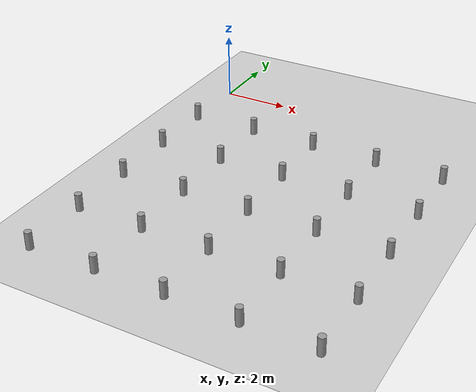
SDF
<sdf version="1.5">
 <world name="default">
  <model name="ground_plane">
   <static>1</static>
   <link name="link">
    <collision name="collision">
     <geometry><plane><normal>0 0 1</normal><size>100 100</size></plane></geometry>
     <surface><friction><ode><mu>100</mu><mu2>50</mu2></ode></friction></surface>
    </collision>
    <visual name="visual">
     <cast_shadows>0</cast_shadows>
     <geometry><plane><normal>0 0 1</normal><size>100 100</size></plane></geometry>
     <material>
      <script><uri>file://media/materials/scripts/gazebo.material</uri><name>Gazebo/Grey</name></script>
     </material>
    </visual>
   </link>
  </model>
  <model name="unit_cylinder_0_-10">
   <pose>0 -10 0 0 -0 1.7e-05</pose>
   <link name="link">
    <inertial>
     <mass>1</mass>
     <inertia><ixx>1</ixx><ixy>0</ixy><ixz>0</ixz><iyy>1</iyy><iyz>0</iyz><izz>1</izz></inertia>
    </inertial>
    <collision name="collision">
     <geometry><cylinder><radius>0.1</radius><length>1</length></cylinder></geometry>
    </collision>
    <visual name="visual">
     <geometry><cylinder><radius>0.1</radius><length>1</length></cylinder></geometry>
     <material>
      <script><uri>file://media/materials/scripts/gazebo.material</uri><name>Gazebo/Grey</name></script>
     </material>
    </visual>
   </link>
  </model>
  <model name="unit_cylinder_0_-8">
   <pose>0 -8 0 0 -0 1.7e-05</pose>
   <link name="link">
    <inertial>
     <mass>1</mass>
     <inertia><ixx>1</ixx><ixy>0</ixy><ixz>0</ixz><iyy>1</iyy><iyz>0</iyz><izz>1</izz></inertia>
    </inertial>
    <collision name="collision">
     <geometry><cylinder><radius>0.1</radius><length>1</length></cylinder></geometry>
    </collision>
    <visual name="visual">
     <geometry><cylinder><radius>0.1</radius><length>1</length></cylinder></geometry>
     <material>
      <script><uri>file://media/materials/scripts/gazebo.material</uri><name>Gazebo/Grey</name></script>
     </material>
    </visual>
   </link>
  </model>
  <model name="unit_cylinder_0_-6">
   <pose>0 -6 0 0 -0 1.7e-05</pose>
   <link name="link">
    <inertial>
     <mass>1</mass>
     <inertia><ixx>1</ixx><ixy>0</ixy><ixz>0</ixz><iyy>1</iyy><iyz>0</iyz><izz>1</izz></inertia>
    </inertial>
    <collision name="collision">
     <geometry><cylinder><radius>0.1</radius><length>1</length></cylinder></geometry>
    </collision>
    <visual name="visual">
     <geometry><cylinder><radius>0.1</radius><length>1</length></cylinder></geometry>
     <material>
      <script><uri>file://media/materials/scripts/gazebo.material</uri><name>Gazebo/Grey</name></script>
     </material>
    </visual>
   </link>
  </model>
  <model name="unit_cylinder_0_-4">
   <pose>0 -4 0 0 -0 1.7e-05</pose>
   <link name="link">
    <inertial>
     <mass>1</mass>
     <inertia><ixx>1</ixx><ixy>0</ixy><ixz>0</ixz><iyy>1</iyy><iyz>0</iyz><izz>1</izz></inertia>
    </inertial>
    <collision name="collision">
     <geometry><cylinder><radius>0.1</radius><length>1</length></cylinder></geometry>
    </collision>
    <visual name="visual">
     <geometry><cylinder><radius>0.1</radius><length>1</length></cylinder></geometry>
     <material>
      <script><uri>file://media/materials/scripts/gazebo.material</uri><name>Gazebo/Grey</name></script>
     </material>
    </visual>
   </link>
  </model>
  <model name="unit_cylinder_0_-2">
   <pose>0 -2 0 0 -0 1.7e-05</pose>
   <link name="link">
    <inertial>
     <mass>1</mass>
     <inertia><ixx>1</ixx><ixy>0</ixy><ixz>0</ixz><iyy>1</iyy><iyz>0</iyz><izz>1</izz></inertia>
    </inertial>
    <collision name="collision">
     <geometry><cylinder><radius>0.1</radius><length>1</length></cylinder></geometry>
    </collision>
    <visual name="visual">
     <geometry><cylinder><radius>0.1</radius><length>1</length></cylinder></geometry>
     <material>
      <script><uri>file://media/materials/scripts/gazebo.material</uri><name>Gazebo/Grey</name></script>
     </material>
    </visual>
   </link>
  </model>
  <model name="unit_cylinder_2_-10">
   <pose>2 -10 0 0 -0 1.7e-05</pose>
   <link name="link">
    <inertial>
     <mass>1</mass>
     <inertia><ixx>1</ixx><ixy>0</ixy><ixz>0</ixz><iyy>1</iyy><iyz>0</iyz><izz>1</izz></inertia>
    </inertial>
    <collision name="collision">
     <geometry><cylinder><radius>0.1</radius><length>1</length></cylinder></geometry>
    </collision>
    <visual name="visual">
     <geometry><cylinder><radius>0.1</radius><length>1</length></cylinder></geometry>
     <material>
      <script><uri>file://media/materials/scripts/gazebo.material</uri><name>Gazebo/Grey</name></script>
     </material>
    </visual>
   </link>
  </model>
  <model name="unit_cylinder_2_-8">
   <pose>2 -8 0 0 -0 1.7e-05</pose>
   <link name="link">
    <inertial>
     <mass>1</mass>
     <inertia><ixx>1</ixx><ixy>0</ixy><ixz>0</ixz><iyy>1</iyy><iyz>0</iyz><izz>1</izz></inertia>
    </inertial>
    <collision name="collision">
     <geometry><cylinder><radius>0.1</radius><length>1</length></cylinder></geometry>
    </collision>
    <visual name="visual">
     <geometry><cylinder><radius>0.1</radius><length>1</length></cylinder></geometry>
     <material>
      <script><uri>file://media/materials/scripts/gazebo.material</uri><name>Gazebo/Grey</name></script>
     </material>
    </visual>
   </link>
  </model>
  <model name="unit_cylinder_2_-6">
   <pose>2 -6 0 0 -0 1.7e-05</pose>
   <link name="link">
    <inertial>
     <mass>1</mass>
     <inertia><ixx>1</ixx><ixy>0</ixy><ixz>0</ixz><iyy>1</iyy><iyz>0</iyz><izz>1</izz></inertia>
    </inertial>
    <collision name="collision">
     <geometry><cylinder><radius>0.1</radius><length>1</length></cylinder></geometry>
    </collision>
    <visual name="visual">
     <geometry><cylinder><radius>0.1</radius><length>1</length></cylinder></geometry>
     <material>
      <script><uri>file://media/materials/scripts/gazebo.material</uri><name>Gazebo/Grey</name></script>
     </material>
    </visual>
   </link>
  </model>
  <model name="unit_cylinder_2_-4">
   <pose>2 -4 0 0 -0 1.7e-05</pose>
   <link name="link">
    <inertial>
     <mass>1</mass>
     <inertia><ixx>1</ixx><ixy>0</ixy><ixz>0</ixz><iyy>1</iyy><iyz>0</iyz><izz>1</izz></inertia>
    </inertial>
    <collision name="collision">
     <geometry><cylinder><radius>0.1</radius><length>1</length></cylinder></geometry>
    </collision>
    <visual name="visual">
     <geometry><cylinder><radius>0.1</radius><length>1</length></cylinder></geometry>
     <material>
      <script><uri>file://media/materials/scripts/gazebo.material</uri><name>Gazebo/Grey</name></script>
     </material>
    </visual>
   </link>
  </model>
  <model name="unit_cylinder_2_-2">
   <pose>2 -2 0 0 -0 1.7e-05</pose>
   <link name="link">
    <inertial>
     <mass>1</mass>
     <inertia><ixx>1</ixx><ixy>0</ixy><ixz>0</ixz><iyy>1</iyy><iyz>0</iyz><izz>1</izz></inertia>
    </inertial>
    <collision name="collision">
     <geometry><cylinder><radius>0.1</radius><length>1</length></cylinder></geometry>
    </collision>
    <visual name="visual">
     <geometry><cylinder><radius>0.1</radius><length>1</length></cylinder></geometry>
     <material>
      <script><uri>file://media/materials/scripts/gazebo.material</uri><name>Gazebo/Grey</name></script>
     </material>
    </visual>
   </link>
  </model>
  <model name="unit_cylinder_4_-10">
   <pose>4 -10 0 0 -0 1.7e-05</pose>
   <link name="link">
    <inertial>
     <mass>1</mass>
     <inertia><ixx>1</ixx><ixy>0</ixy><ixz>0</ixz><iyy>1</iyy><iyz>0</iyz><izz>1</izz></inertia>
    </inertial>
    <collision name="collision">
     <geometry><cylinder><radius>0.1</radius><length>1</length></cylinder></geometry>
    </collision>
    <visual name="visual">
     <geometry><cylinder><radius>0.1</radius><length>1</length></cylinder></geometry>
     <material>
      <script><uri>file://media/materials/scripts/gazebo.material</uri><name>Gazebo/Grey</name></script>
     </material>
    </visual>
   </link>
  </model>
  <model name="unit_cylinder_4_-8">
   <pose>4 -8 0 0 -0 1.7e-05</pose>
   <link name="link">
    <inertial>
     <mass>1</mass>
     <inertia><ixx>1</ixx><ixy>0</ixy><ixz>0</ixz><iyy>1</iyy><iyz>0</iyz><izz>1</izz></inertia>
    </inertial>
    <collision name="collision">
     <geometry><cylinder><radius>0.1</radius><length>1</length></cylinder></geometry>
    </collision>
    <visual name="visual">
     <geometry><cylinder><radius>0.1</radius><length>1</length></cylinder></geometry>
     <material>
      <script><uri>file://media/materials/scripts/gazebo.material</uri><name>Gazebo/Grey</name></script>
     </material>
    </visual>
   </link>
  </model>
  <model name="unit_cylinder_4_-6">
   <pose>4 -6 0 0 -0 1.7e-05</pose>
   <link name="link">
    <inertial>
     <mass>1</mass>
     <inertia><ixx>1</ixx><ixy>0</ixy><ixz>0</ixz><iyy>1</iyy><iyz>0</iyz><izz>1</izz></inertia>
    </inertial>
    <collision name="collision">
     <geometry><cylinder><radius>0.1</radius><length>1</length></cylinder></geometry>
    </collision>
    <visual name="visual">
     <geometry><cylinder><radius>0.1</radius><length>1</length></cylinder></geometry>
     <material>
      <script><uri>file://media/materials/scripts/gazebo.material</uri><name>Gazebo/Grey</name></script>
     </material>
    </visual>
   </link>
  </model>
  <model name="unit_cylinder_4_-4">
   <pose>4 -4 0 0 -0 1.7e-05</pose>
   <link name="link">
    <inertial>
     <mass>1</mass>
     <inertia><ixx>1</ixx><ixy>0</ixy><ixz>0</ixz><iyy>1</iyy><iyz>0</iyz><izz>1</izz></inertia>
    </inertial>
    <collision name="collision">
     <geometry><cylinder><radius>0.1</radius><length>1</length></cylinder></geometry>
    </collision>
    <visual name="visual">
     <geometry><cylinder><radius>0.1</radius><length>1</length></cylinder></geometry>
     <material>
      <script><uri>file://media/materials/scripts/gazebo.material</uri><name>Gazebo/Grey</name></script>
     </material>
    </visual>
   </link>
  </model>
  <model name="unit_cylinder_4_-2">
   <pose>4 -2 0 0 -0 1.7e-05</pose>
   <link name="link">
    <inertial>
     <mass>1</mass>
     <inertia><ixx>1</ixx><ixy>0</ixy><ixz>0</ixz><iyy>1</iyy><iyz>0</iyz><izz>1</izz></inertia>
    </inertial>
    <collision name="collision">
     <geometry><cylinder><radius>0.1</radius><length>1</length></cylinder></geometry>
    </collision>
    <visual name="visual">
     <geometry><cylinder><radius>0.1</radius><length>1</length></cylinder></geometry>
     <material>
      <script><uri>file://media/materials/scripts/gazebo.material</uri><name>Gazebo/Grey</name></script>
     </material>
    </visual>
   </link>
  </model>
  <model name="unit_cylinder_6_-10">
   <pose>6 -10 0 0 -0 1.7e-05</pose>
   <link name="link">
    <inertial>
     <mass>1</mass>
     <inertia><ixx>1</ixx><ixy>0</ixy><ixz>0</ixz><iyy>1</iyy><iyz>0</iyz><izz>1</izz></inertia>
    </inertial>
    <collision name="collision">
     <geometry><cylinder><radius>0.1</radius><length>1</length></cylinder></geometry>
    </collision>
    <visual name="visual">
     <geometry><cylinder><radius>0.1</radius><length>1</length></cylinder></geometry>
     <material>
      <script><uri>file://media/materials/scripts/gazebo.material</uri><name>Gazebo/Grey</name></script>
     </material>
    </visual>
   </link>
  </model>
  <model name="unit_cylinder_6_-8">
   <pose>6 -8 0 0 -0 1.7e-05</pose>
   <link name="link">
    <inertial>
     <mass>1</mass>
     <inertia><ixx>1</ixx><ixy>0</ixy><ixz>0</ixz><iyy>1</iyy><iyz>0</iyz><izz>1</izz></inertia>
    </inertial>
    <collision name="collision">
     <geometry><cylinder><radius>0.1</radius><length>1</length></cylinder></geometry>
    </collision>
    <visual name="visual">
     <geometry><cylinder><radius>0.1</radius><length>1</length></cylinder></geometry>
     <material>
      <script><uri>file://media/materials/scripts/gazebo.material</uri><name>Gazebo/Grey</name></script>
     </material>
    </visual>
   </link>
  </model>
  <model name="unit_cylinder_6_-6">
   <pose>6 -6 0 0 -0 1.7e-05</pose>
   <link name="link">
    <inertial>
     <mass>1</mass>
     <inertia><ixx>1</ixx><ixy>0</ixy><ixz>0</ixz><iyy>1</iyy><iyz>0</iyz><izz>1</izz></inertia>
    </inertial>
    <collision name="collision">
     <geometry><cylinder><radius>0.1</radius><length>1</length></cylinder></geometry>
    </collision>
    <visual name="visual">
     <geometry><cylinder><radius>0.1</radius><length>1</length></cylinder></geometry>
     <material>
      <script><uri>file://media/materials/scripts/gazebo.material</uri><name>Gazebo/Grey</name></script>
     </material>
    </visual>
   </link>
  </model>
  <model name="unit_cylinder_6_-4">
   <pose>6 -4 0 0 -0 1.7e-05</pose>
   <link name="link">
    <inertial>
     <mass>1</mass>
     <inertia><ixx>1</ixx><ixy>0</ixy><ixz>0</ixz><iyy>1</iyy><iyz>0</iyz><izz>1</izz></inertia>
    </inertial>
    <collision name="collision">
     <geometry><cylinder><radius>0.1</radius><length>1</length></cylinder></geometry>
    </collision>
    <visual name="visual">
     <geometry><cylinder><radius>0.1</radius><length>1</length></cylinder></geometry>
     <material>
      <script><uri>file://media/materials/scripts/gazebo.material</uri><name>Gazebo/Grey</name></script>
     </material>
    </visual>
   </link>
  </model>
  <model name="unit_cylinder_6_-2">
   <pose>6 -2 0 0 -0 1.7e-05</pose>
   <link name="link">
    <inertial>
     <mass>1</mass>
     <inertia><ixx>1</ixx><ixy>0</ixy><ixz>0</ixz><iyy>1</iyy><iyz>0</iyz><izz>1</izz></inertia>
    </inertial>
    <collision name="collision">
     <geometry><cylinder><radius>0.1</radius><length>1</length></cylinder></geometry>
    </collision>
    <visual name="visual">
     <geometry><cylinder><radius>0.1</radius><length>1</length></cylinder></geometry>
     <material>
      <script><uri>file://media/materials/scripts/gazebo.material</uri><name>Gazebo/Grey</name></script>
     </material>
    </visual>
   </link>
  </model>
  <model name="unit_cylinder_8_-10">
   <pose>8 -10 0 0 -0 1.7e-05</pose>
   <link name="link">
    <inertial>
     <mass>1</mass>
     <inertia><ixx>1</ixx><ixy>0</ixy><ixz>0</ixz><iyy>1</iyy><iyz>0</iyz><izz>1</izz></inertia>
    </inertial>
    <collision name="collision">
     <geometry><cylinder><radius>0.1</radius><length>1</length></cylinder></geometry>
    </collision>
    <visual name="visual">
     <geometry><cylinder><radius>0.1</radius><length>1</length></cylinder></geometry>
     <material>
      <script><uri>file://media/materials/scripts/gazebo.material</uri><name>Gazebo/Grey</name></script>
     </material>
    </visual>
   </link>
  </model>
  <model name="unit_cylinder_8_-8">
   <pose>8 -8 0 0 -0 1.7e-05</pose>
   <link name="link">
    <inertial>
     <mass>1</mass>
     <inertia><ixx>1</ixx><ixy>0</ixy><ixz>0</ixz><iyy>1</iyy><iyz>0</iyz><izz>1</izz></inertia>
    </inertial>
    <collision name="collision">
     <geometry><cylinder><radius>0.1</radius><length>1</length></cylinder></geometry>
    </collision>
    <visual name="visual">
     <geometry><cylinder><radius>0.1</radius><length>1</length></cylinder></geometry>
     <material>
      <script><uri>file://media/materials/scripts/gazebo.material</uri><name>Gazebo/Grey</name></script>
     </material>
    </visual>
   </link>
  </model>
  <model name="unit_cylinder_8_-6">
   <pose>8 -6 0 0 -0 1.7e-05</pose>
   <link name="link">
    <inertial>
     <mass>1</mass>
     <inertia><ixx>1</ixx><ixy>0</ixy><ixz>0</ixz><iyy>1</iyy><iyz>0</iyz><izz>1</izz></inertia>
    </inertial>
    <collision name="collision">
     <geometry><cylinder><radius>0.1</radius><length>1</length></cylinder></geometry>
    </collision>
    <visual name="visual">
     <geometry><cylinder><radius>0.1</radius><length>1</length></cylinder></geometry>
     <material>
      <script><uri>file://media/materials/scripts/gazebo.material</uri><name>Gazebo/Grey</name></script>
     </material>
    </visual>
   </link>
  </model>
  <model name="unit_cylinder_8_-4">
   <pose>8 -4 0 0 -0 1.7e-05</pose>
   <link name="link">
    <inertial>
     <mass>1</mass>
     <inertia><ixx>1</ixx><ixy>0</ixy><ixz>0</ixz><iyy>1</iyy><iyz>0</iyz><izz>1</izz></inertia>
    </inertial>
    <collision name="collision">
     <geometry><cylinder><radius>0.1</radius><length>1</length></cylinder></geometry>
    </collision>
    <visual name="visual">
     <geometry><cylinder><radius>0.1</radius><length>1</length></cylinder></geometry>
     <material>
      <script><uri>file://media/materials/scripts/gazebo.material</uri><name>Gazebo/Grey</name></script>
     </material>
    </visual>
   </link>
  </model>
  <model name="unit_cylinder_8_-2">
   <pose>8 -2 0 0 -0 1.7e-05</pose>
   <link name="link">
    <inertial>
     <mass>1</mass>
     <inertia><ixx>1</ixx><ixy>0</ixy><ixz>0</ixz><iyy>1</iyy><iyz>0</iyz><izz>1</izz></inertia>
    </inertial>
    <collision name="collision">
     <geometry><cylinder><radius>0.1</radius><length>1</length></cylinder></geometry>
    </collision>
    <visual name="visual">
     <geometry><cylinder><radius>0.1</radius><length>1</length></cylinder></geometry>
     <material>
      <script><uri>file://media/materials/scripts/gazebo.material</uri><name>Gazebo/Grey</name></script>
     </material>
    </visual>
   </link>
  </model>
 </world>
</sdf>
